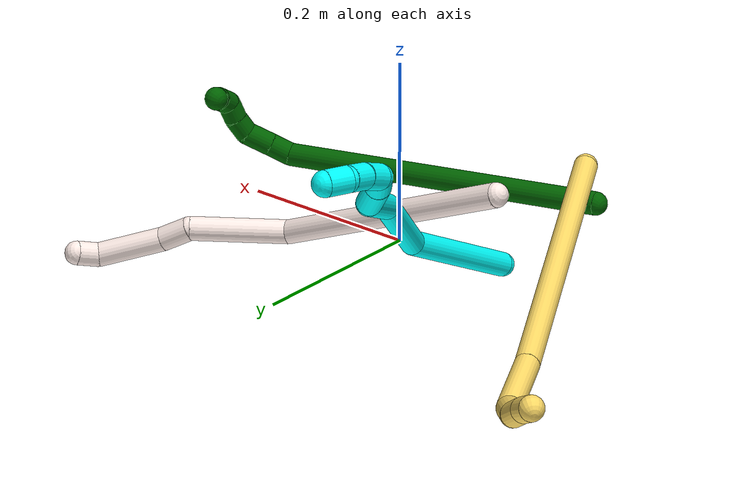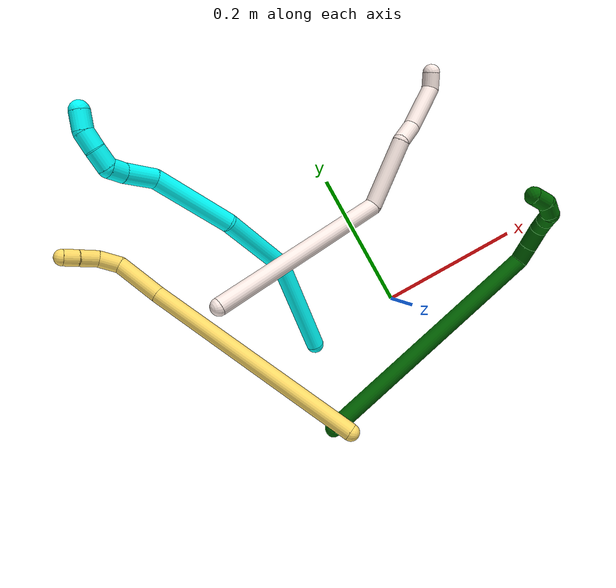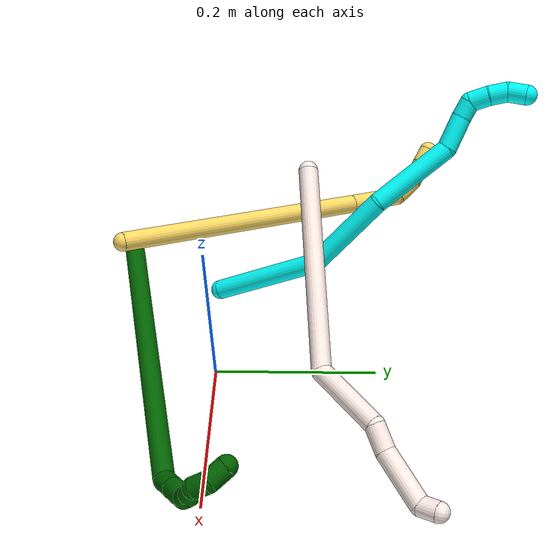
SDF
<sdf version="1.7">
 <world name="default">
  <model name="3">
   <static>0</static>
   <link name="3">
    <collision name="collision-cylinder-e_1_1_4">
     <pose>-0.013373 0.012123 0.069575 -0.172514 -0.187147 0.01623</pose>
     <geometry><cylinder><radius>0.0125</radius><length>0.143756</length></cylinder></geometry>
     <surface>
      <friction><ode><mu>1.16</mu><mu2>1.16</mu2><slip1>0</slip1><slip2>0</slip2></ode></friction>
      <contact><ode><kp>1e+06</kp><kd>1</kd><max_vel>0</max_vel><min_depth>0.001</min_depth></ode></contact>
     </surface>
    </collision>
    <visual name="visual-cylinder-e_1_1_4">
     <pose>-0.013373 0.012123 0.069575 -0.172514 -0.187147 0.01623</pose>
     <geometry><cylinder><radius>0.0125</radius><length>0.143756</length></cylinder></geometry>
     <material><ambient>0.003922 1 0.996078 1</ambient></material>
    </visual>
    <collision name="collision-cylinder-e_2_4_5">
     <pose>-0.015214 0.048175 0.188382 -0.452419 0.207654 -0.047955</pose>
     <geometry><cylinder><radius>0.0125</radius><length>0.111882</length></cylinder></geometry>
     <surface>
      <friction><ode><mu>1.16</mu><mu2>1.16</mu2><slip1>0</slip1><slip2>0</slip2></ode></friction>
      <contact><ode><kp>1e+06</kp><kd>1</kd><max_vel>0</max_vel><min_depth>0.001</min_depth></ode></contact>
     </surface>
    </collision>
    <visual name="visual-cylinder-e_2_4_5">
     <pose>-0.015214 0.048175 0.188382 -0.452419 0.207654 -0.047955</pose>
     <geometry><cylinder><radius>0.0125</radius><length>0.111882</length></cylinder></geometry>
     <material><ambient>0.003922 1 0.996078 1</ambient></material>
    </visual>
    <collision name="collision-cylinder-e_3_5_6">
     <pose>0.016789 0.081293 0.287286 -0.182925 0.385002 -0.035751</pose>
     <geometry><cylinder><radius>0.0125</radius><length>0.109009</length></cylinder></geometry>
     <surface>
      <friction><ode><mu>1.16</mu><mu2>1.16</mu2><slip1>0</slip1><slip2>0</slip2></ode></friction>
      <contact><ode><kp>1e+06</kp><kd>1</kd><max_vel>0</max_vel><min_depth>0.001</min_depth></ode></contact>
     </surface>
    </collision>
    <visual name="visual-cylinder-e_3_5_6">
     <pose>0.016789 0.081293 0.287286 -0.182925 0.385002 -0.035751</pose>
     <geometry><cylinder><radius>0.0125</radius><length>0.109009</length></cylinder></geometry>
     <material><ambient>0.003922 1 0.996078 1</ambient></material>
    </visual>
    <collision name="collision-cylinder-e_4_6_7">
     <pose>0.048951 0.101656 0.350775 -0.679989 0.581976 -0.21109</pose>
     <geometry><cylinder><radius>0.0125</radius><length>0.042544</length></cylinder></geometry>
     <surface>
      <friction><ode><mu>1.16</mu><mu2>1.16</mu2><slip1>0</slip1><slip2>0</slip2></ode></friction>
      <contact><ode><kp>1e+06</kp><kd>1</kd><max_vel>0</max_vel><min_depth>0.001</min_depth></ode></contact>
     </surface>
    </collision>
    <visual name="visual-cylinder-e_4_6_7">
     <pose>0.048951 0.101656 0.350775 -0.679989 0.581976 -0.21109</pose>
     <geometry><cylinder><radius>0.0125</radius><length>0.042544</length></cylinder></geometry>
     <material><ambient>0.003922 1 0.996078 1</ambient></material>
    </visual>
    <collision name="collision-cylinder-e_5_7_8">
     <pose>0.065178 0.118862 0.372218 -0.669343 0.436348 -0.153891</pose>
     <geometry><cylinder><radius>0.0125</radius><length>0.021457</length></cylinder></geometry>
     <surface>
      <friction><ode><mu>1.16</mu><mu2>1.16</mu2><slip1>0</slip1><slip2>0</slip2></ode></friction>
      <contact><ode><kp>1e+06</kp><kd>1</kd><max_vel>0</max_vel><min_depth>0.001</min_depth></ode></contact>
     </surface>
    </collision>
    <visual name="visual-cylinder-e_5_7_8">
     <pose>0.065178 0.118862 0.372218 -0.669343 0.436348 -0.153891</pose>
     <geometry><cylinder><radius>0.0125</radius><length>0.021457</length></cylinder></geometry>
     <material><ambient>0.003922 1 0.996078 1</ambient></material>
    </visual>
    <collision name="collision-cylinder-e_6_8_9">
     <pose>0.069281 0.125624 0.392035 -0.059708 -0.035286 0.001054</pose>
     <geometry><cylinder><radius>0.0125</radius><length>0.024444</length></cylinder></geometry>
     <surface>
      <friction><ode><mu>1.16</mu><mu2>1.16</mu2><slip1>0</slip1><slip2>0</slip2></ode></friction>
      <contact><ode><kp>1e+06</kp><kd>1</kd><max_vel>0</max_vel><min_depth>0.001</min_depth></ode></contact>
     </surface>
    </collision>
    <visual name="visual-cylinder-e_6_8_9">
     <pose>0.069281 0.125624 0.392035 -0.059708 -0.035286 0.001054</pose>
     <geometry><cylinder><radius>0.0125</radius><length>0.024444</length></cylinder></geometry>
     <material><ambient>0.003922 1 0.996078 1</ambient></material>
    </visual>
    <collision name="collision-cylinder-e_7_9_10">
     <pose>0.06825 0.12542 0.415773 0.080615 -0.051734 -0.002087</pose>
     <geometry><cylinder><radius>0.0125</radius><length>0.023196</length></cylinder></geometry>
     <surface>
      <friction><ode><mu>1.16</mu><mu2>1.16</mu2><slip1>0</slip1><slip2>0</slip2></ode></friction>
      <contact><ode><kp>1e+06</kp><kd>1</kd><max_vel>0</max_vel><min_depth>0.001</min_depth></ode></contact>
     </surface>
    </collision>
    <visual name="visual-cylinder-e_7_9_10">
     <pose>0.06825 0.12542 0.415773 0.080615 -0.051734 -0.002087</pose>
     <geometry><cylinder><radius>0.0125</radius><length>0.023196</length></cylinder></geometry>
     <material><ambient>0.003922 1 0.996078 1</ambient></material>
    </visual>
    <collision name="collision-cylinder-e_8_10_2">
     <pose>0.062792 0.121627 0.437748 0.26767 -0.422232 -0.057693</pose>
     <geometry><cylinder><radius>0.0125</radius><length>0.023712</length></cylinder></geometry>
     <surface>
      <friction><ode><mu>1.16</mu><mu2>1.16</mu2><slip1>0</slip1><slip2>0</slip2></ode></friction>
      <contact><ode><kp>1e+06</kp><kd>1</kd><max_vel>0</max_vel><min_depth>0.001</min_depth></ode></contact>
     </surface>
    </collision>
    <visual name="visual-cylinder-e_8_10_2">
     <pose>0.062792 0.121627 0.437748 0.26767 -0.422232 -0.057693</pose>
     <geometry><cylinder><radius>0.0125</radius><length>0.023712</length></cylinder></geometry>
     <material><ambient>0.003922 1 0.996078 1</ambient></material>
    </visual>
    <collision name="collision-sphere-2">
     <pose>0.057933 0.118767 0.448177 0 -0 0</pose>
     <geometry><sphere><radius>0.0125</radius></sphere></geometry>
     <surface>
      <friction><ode><mu>1.16</mu><mu2>1.16</mu2><slip1>0</slip1><slip2>0</slip2></ode></friction>
      <contact><ode><kp>1e+06</kp><kd>1</kd><max_vel>0</max_vel><min_depth>0.001</min_depth></ode></contact>
     </surface>
    </collision>
    <visual name="visual-sphere-2">
     <pose>0.057933 0.118767 0.448177 0 -0 0</pose>
     <geometry><sphere><radius>0.0125</radius></sphere></geometry>
     <material><ambient>0.003922 1 0.996078 1</ambient></material>
    </visual>
    <collision name="collision-sphere-10">
     <pose>0.067651 0.124487 0.427318 0 -0 0</pose>
     <geometry><sphere><radius>0.0125</radius></sphere></geometry>
     <surface>
      <friction><ode><mu>1.16</mu><mu2>1.16</mu2><slip1>0</slip1><slip2>0</slip2></ode></friction>
      <contact><ode><kp>1e+06</kp><kd>1</kd><max_vel>0</max_vel><min_depth>0.001</min_depth></ode></contact>
     </surface>
    </collision>
    <visual name="visual-sphere-10">
     <pose>0.067651 0.124487 0.427318 0 -0 0</pose>
     <geometry><sphere><radius>0.0125</radius></sphere></geometry>
     <material><ambient>0.003922 1 0.996078 1</ambient></material>
    </visual>
    <collision name="collision-sphere-9">
     <pose>0.06885 0.126353 0.404228 0 -0 0</pose>
     <geometry><sphere><radius>0.0125</radius></sphere></geometry>
     <surface>
      <friction><ode><mu>1.16</mu><mu2>1.16</mu2><slip1>0</slip1><slip2>0</slip2></ode></friction>
      <contact><ode><kp>1e+06</kp><kd>1</kd><max_vel>0</max_vel><min_depth>0.001</min_depth></ode></contact>
     </surface>
    </collision>
    <visual name="visual-sphere-9">
     <pose>0.06885 0.126353 0.404228 0 -0 0</pose>
     <geometry><sphere><radius>0.0125</radius></sphere></geometry>
     <material><ambient>0.003922 1 0.996078 1</ambient></material>
    </visual>
    <collision name="collision-sphere-4">
     <pose>-0.026747 0.024246 0.13915 0 -0 0</pose>
     <geometry><sphere><radius>0.0125</radius></sphere></geometry>
     <surface>
      <friction><ode><mu>1.16</mu><mu2>1.16</mu2><slip1>0</slip1><slip2>0</slip2></ode></friction>
      <contact><ode><kp>1e+06</kp><kd>1</kd><max_vel>0</max_vel><min_depth>0.001</min_depth></ode></contact>
     </surface>
    </collision>
    <visual name="visual-sphere-4">
     <pose>-0.026747 0.024246 0.13915 0 -0 0</pose>
     <geometry><sphere><radius>0.0125</radius></sphere></geometry>
     <material><ambient>0.003922 1 0.996078 1</ambient></material>
    </visual>
    <collision name="collision-sphere-1">
     <geometry><sphere><radius>0.0125</radius></sphere></geometry>
     <surface>
      <friction><ode><mu>1.16</mu><mu2>1.16</mu2><slip1>0</slip1><slip2>0</slip2></ode></friction>
      <contact><ode><kp>1e+06</kp><kd>1</kd><max_vel>0</max_vel><min_depth>0.001</min_depth></ode></contact>
     </surface>
    </collision>
    <visual name="visual-sphere-1">
     <geometry><sphere><radius>0.0125</radius></sphere></geometry>
     <material><ambient>0.003922 1 0.996078 1</ambient></material>
    </visual>
    <collision name="collision-sphere-8">
     <pose>0.069712 0.124895 0.379843 0 -0 0</pose>
     <geometry><sphere><radius>0.0125</radius></sphere></geometry>
     <surface>
      <friction><ode><mu>1.16</mu><mu2>1.16</mu2><slip1>0</slip1><slip2>0</slip2></ode></friction>
      <contact><ode><kp>1e+06</kp><kd>1</kd><max_vel>0</max_vel><min_depth>0.001</min_depth></ode></contact>
     </surface>
    </collision>
    <visual name="visual-sphere-8">
     <pose>0.069712 0.124895 0.379843 0 -0 0</pose>
     <geometry><sphere><radius>0.0125</radius></sphere></geometry>
     <material><ambient>0.003922 1 0.996078 1</ambient></material>
    </visual>
    <collision name="collision-sphere-5">
     <pose>-0.003681 0.072104 0.237614 0 -0 0</pose>
     <geometry><sphere><radius>0.0125</radius></sphere></geometry>
     <surface>
      <friction><ode><mu>1.16</mu><mu2>1.16</mu2><slip1>0</slip1><slip2>0</slip2></ode></friction>
      <contact><ode><kp>1e+06</kp><kd>1</kd><max_vel>0</max_vel><min_depth>0.001</min_depth></ode></contact>
     </surface>
    </collision>
    <visual name="visual-sphere-5">
     <pose>-0.003681 0.072104 0.237614 0 -0 0</pose>
     <geometry><sphere><radius>0.0125</radius></sphere></geometry>
     <material><ambient>0.003922 1 0.996078 1</ambient></material>
    </visual>
    <collision name="collision-sphere-6">
     <pose>0.037259 0.090482 0.336957 0 -0 0</pose>
     <geometry><sphere><radius>0.0125</radius></sphere></geometry>
     <surface>
      <friction><ode><mu>1.16</mu><mu2>1.16</mu2><slip1>0</slip1><slip2>0</slip2></ode></friction>
      <contact><ode><kp>1e+06</kp><kd>1</kd><max_vel>0</max_vel><min_depth>0.001</min_depth></ode></contact>
     </surface>
    </collision>
    <visual name="visual-sphere-6">
     <pose>0.037259 0.090482 0.336957 0 -0 0</pose>
     <geometry><sphere><radius>0.0125</radius></sphere></geometry>
     <material><ambient>0.003922 1 0.996078 1</ambient></material>
    </visual>
    <collision name="collision-sphere-7">
     <pose>0.060644 0.112829 0.364593 0 -0 0</pose>
     <geometry><sphere><radius>0.0125</radius></sphere></geometry>
     <surface>
      <friction><ode><mu>1.16</mu><mu2>1.16</mu2><slip1>0</slip1><slip2>0</slip2></ode></friction>
      <contact><ode><kp>1e+06</kp><kd>1</kd><max_vel>0</max_vel><min_depth>0.001</min_depth></ode></contact>
     </surface>
    </collision>
    <visual name="visual-sphere-7">
     <pose>0.060644 0.112829 0.364593 0 -0 0</pose>
     <geometry><sphere><radius>0.0125</radius></sphere></geometry>
     <material><ambient>0.003922 1 0.996078 1</ambient></material>
    </visual>
    <inertial>
     <pose>0.012904 0.063467 0.229824 0 -0 0</pose>
     <mass>0.5</mass>
     <inertia>
      <ixx>0.000482</ixx>
      <ixy>0</ixy>
      <ixz>0</ixz>
      <iyy>0.000486</iyy>
      <iyz>0</iyz>
      <izz>-0.000107</izz>
     </inertia>
    </inertial>
   </link>
   <pose>-0.132883 -0.003558 0.011492 1.26501 0.0119 -3.05309</pose>
  </model>
  <model name="5">
   <static>0</static>
   <link name="5">
    <collision name="collision-cylinder-e_1_1_4">
     <pose>-0.041487 0.049731 0.158381 -0.304249 -0.2449 0.03773</pose>
     <geometry><cylinder><radius>0.0125</radius><length>0.342221</length></cylinder></geometry>
     <surface>
      <friction><ode><mu>1.16</mu><mu2>1.16</mu2><slip1>0</slip1><slip2>0</slip2></ode></friction>
      <contact><ode><kp>1e+06</kp><kd>1</kd><max_vel>0</max_vel><min_depth>0.001</min_depth></ode></contact>
     </surface>
    </collision>
    <visual name="visual-cylinder-e_1_1_4">
     <pose>-0.041487 0.049731 0.158381 -0.304249 -0.2449 0.03773</pose>
     <geometry><cylinder><radius>0.0125</radius><length>0.342221</length></cylinder></geometry>
     <material><ambient>1 0.858824 0.4 1</ambient></material>
    </visual>
    <collision name="collision-cylinder-e_2_4_5">
     <pose>-0.091951 0.112654 0.349789 -0.38 -0.247247 0.047785</pose>
     <geometry><cylinder><radius>0.0125</radius><length>0.073359</length></cylinder></geometry>
     <surface>
      <friction><ode><mu>1.16</mu><mu2>1.16</mu2><slip1>0</slip1><slip2>0</slip2></ode></friction>
      <contact><ode><kp>1e+06</kp><kd>1</kd><max_vel>0</max_vel><min_depth>0.001</min_depth></ode></contact>
     </surface>
    </collision>
    <visual name="visual-cylinder-e_2_4_5">
     <pose>-0.091951 0.112654 0.349789 -0.38 -0.247247 0.047785</pose>
     <geometry><cylinder><radius>0.0125</radius><length>0.073359</length></cylinder></geometry>
     <material><ambient>1 0.858824 0.4 1</ambient></material>
    </visual>
    <collision name="collision-cylinder-e_3_5_6">
     <pose>-0.096045 0.13305 0.396719 -0.478123 0.302295 -0.074208</pose>
     <geometry><cylinder><radius>0.0125</radius><length>0.032807</length></cylinder></geometry>
     <surface>
      <friction><ode><mu>1.16</mu><mu2>1.16</mu2><slip1>0</slip1><slip2>0</slip2></ode></friction>
      <contact><ode><kp>1e+06</kp><kd>1</kd><max_vel>0</max_vel><min_depth>0.001</min_depth></ode></contact>
     </surface>
    </collision>
    <visual name="visual-cylinder-e_3_5_6">
     <pose>-0.096045 0.13305 0.396719 -0.478123 0.302295 -0.074208</pose>
     <geometry><cylinder><radius>0.0125</radius><length>0.032807</length></cylinder></geometry>
     <material><ambient>1 0.858824 0.4 1</ambient></material>
    </visual>
    <collision name="collision-cylinder-e_4_6_7">
     <pose>-0.082129 0.146832 0.419932 -0.615038 0.67009 -0.22026</pose>
     <geometry><cylinder><radius>0.0125</radius><length>0.029087</length></cylinder></geometry>
     <surface>
      <friction><ode><mu>1.16</mu><mu2>1.16</mu2><slip1>0</slip1><slip2>0</slip2></ode></friction>
      <contact><ode><kp>1e+06</kp><kd>1</kd><max_vel>0</max_vel><min_depth>0.001</min_depth></ode></contact>
     </surface>
    </collision>
    <visual name="visual-cylinder-e_4_6_7">
     <pose>-0.082129 0.146832 0.419932 -0.615038 0.67009 -0.22026</pose>
     <geometry><cylinder><radius>0.0125</radius><length>0.029087</length></cylinder></geometry>
     <material><ambient>1 0.858824 0.4 1</ambient></material>
    </visual>
    <collision name="collision-cylinder-e_5_7_2">
     <pose>-0.066528 0.157961 0.43718 -0.520633 0.622618 -0.170997</pose>
     <geometry><cylinder><radius>0.0125</radius><length>0.022527</length></cylinder></geometry>
     <surface>
      <friction><ode><mu>1.16</mu><mu2>1.16</mu2><slip1>0</slip1><slip2>0</slip2></ode></friction>
      <contact><ode><kp>1e+06</kp><kd>1</kd><max_vel>0</max_vel><min_depth>0.001</min_depth></ode></contact>
     </surface>
    </collision>
    <visual name="visual-cylinder-e_5_7_2">
     <pose>-0.066528 0.157961 0.43718 -0.520633 0.622618 -0.170997</pose>
     <geometry><cylinder><radius>0.0125</radius><length>0.022527</length></cylinder></geometry>
     <material><ambient>1 0.858824 0.4 1</ambient></material>
    </visual>
    <collision name="collision-sphere-2">
     <pose>-0.05996 0.162512 0.445117 0 -0 0</pose>
     <geometry><sphere><radius>0.0125</radius></sphere></geometry>
     <surface>
      <friction><ode><mu>1.16</mu><mu2>1.16</mu2><slip1>0</slip1><slip2>0</slip2></ode></friction>
      <contact><ode><kp>1e+06</kp><kd>1</kd><max_vel>0</max_vel><min_depth>0.001</min_depth></ode></contact>
     </surface>
    </collision>
    <visual name="visual-sphere-2">
     <pose>-0.05996 0.162512 0.445117 0 -0 0</pose>
     <geometry><sphere><radius>0.0125</radius></sphere></geometry>
     <material><ambient>1 0.858824 0.4 1</ambient></material>
    </visual>
    <collision name="collision-sphere-7">
     <pose>-0.073097 0.153409 0.429242 0 -0 0</pose>
     <geometry><sphere><radius>0.0125</radius></sphere></geometry>
     <surface>
      <friction><ode><mu>1.16</mu><mu2>1.16</mu2><slip1>0</slip1><slip2>0</slip2></ode></friction>
      <contact><ode><kp>1e+06</kp><kd>1</kd><max_vel>0</max_vel><min_depth>0.001</min_depth></ode></contact>
     </surface>
    </collision>
    <visual name="visual-sphere-7">
     <pose>-0.073097 0.153409 0.429242 0 -0 0</pose>
     <geometry><sphere><radius>0.0125</radius></sphere></geometry>
     <material><ambient>1 0.858824 0.4 1</ambient></material>
    </visual>
    <collision name="collision-sphere-6">
     <pose>-0.091161 0.140255 0.410622 0 -0 0</pose>
     <geometry><sphere><radius>0.0125</radius></sphere></geometry>
     <surface>
      <friction><ode><mu>1.16</mu><mu2>1.16</mu2><slip1>0</slip1><slip2>0</slip2></ode></friction>
      <contact><ode><kp>1e+06</kp><kd>1</kd><max_vel>0</max_vel><min_depth>0.001</min_depth></ode></contact>
     </surface>
    </collision>
    <visual name="visual-sphere-6">
     <pose>-0.091161 0.140255 0.410622 0 -0 0</pose>
     <geometry><sphere><radius>0.0125</radius></sphere></geometry>
     <material><ambient>1 0.858824 0.4 1</ambient></material>
    </visual>
    <collision name="collision-sphere-5">
     <pose>-0.100928 0.125845 0.382816 0 -0 0</pose>
     <geometry><sphere><radius>0.0125</radius></sphere></geometry>
     <surface>
      <friction><ode><mu>1.16</mu><mu2>1.16</mu2><slip1>0</slip1><slip2>0</slip2></ode></friction>
      <contact><ode><kp>1e+06</kp><kd>1</kd><max_vel>0</max_vel><min_depth>0.001</min_depth></ode></contact>
     </surface>
    </collision>
    <visual name="visual-sphere-5">
     <pose>-0.100928 0.125845 0.382816 0 -0 0</pose>
     <geometry><sphere><radius>0.0125</radius></sphere></geometry>
     <material><ambient>1 0.858824 0.4 1</ambient></material>
    </visual>
    <collision name="collision-sphere-1">
     <geometry><sphere><radius>0.0125</radius></sphere></geometry>
     <surface>
      <friction><ode><mu>1.16</mu><mu2>1.16</mu2><slip1>0</slip1><slip2>0</slip2></ode></friction>
      <contact><ode><kp>1e+06</kp><kd>1</kd><max_vel>0</max_vel><min_depth>0.001</min_depth></ode></contact>
     </surface>
    </collision>
    <visual name="visual-sphere-1">
     <geometry><sphere><radius>0.0125</radius></sphere></geometry>
     <material><ambient>1 0.858824 0.4 1</ambient></material>
    </visual>
    <collision name="collision-sphere-4">
     <pose>-0.082975 0.099462 0.316762 0 -0 0</pose>
     <geometry><sphere><radius>0.0125</radius></sphere></geometry>
     <surface>
      <friction><ode><mu>1.16</mu><mu2>1.16</mu2><slip1>0</slip1><slip2>0</slip2></ode></friction>
      <contact><ode><kp>1e+06</kp><kd>1</kd><max_vel>0</max_vel><min_depth>0.001</min_depth></ode></contact>
     </surface>
    </collision>
    <visual name="visual-sphere-4">
     <pose>-0.082975 0.099462 0.316762 0 -0 0</pose>
     <geometry><sphere><radius>0.0125</radius></sphere></geometry>
     <material><ambient>1 0.858824 0.4 1</ambient></material>
    </visual>
    <inertial>
     <pose>-0.055963 0.074955 0.229878 0 -0 0</pose>
     <mass>0.5</mass>
     <inertia>
      <ixx>0.003412</ixx>
      <ixy>0</ixy>
      <ixz>0</ixz>
      <iyy>0.003384</iyy>
      <iyz>0</iyz>
      <izz>-0.000139</izz>
     </inertia>
    </inertial>
   </link>
   <pose>-0.146195 -0.126464 0.084042 1.90188 -0.736989 -2.50566</pose>
  </model>
  <model name="6">
   <static>0</static>
   <link name="6">
    <collision name="collision-cylinder-e_1_1_4">
     <pose>0.063282 0.000692 0.169329 -0.004085 0.35765 -0.000738</pose>
     <geometry><cylinder><radius>0.0125</radius><length>0.361538</length></cylinder></geometry>
     <surface>
      <friction><ode><mu>1.16</mu><mu2>1.16</mu2><slip1>0</slip1><slip2>0</slip2></ode></friction>
      <contact><ode><kp>1e+06</kp><kd>1</kd><max_vel>0</max_vel><min_depth>0.001</min_depth></ode></contact>
     </surface>
    </collision>
    <visual name="visual-cylinder-e_1_1_4">
     <pose>0.063282 0.000692 0.169329 -0.004085 0.35765 -0.000738</pose>
     <geometry><cylinder><radius>0.0125</radius><length>0.361538</length></cylinder></geometry>
     <material><ambient>0 0.392157 0.003922 1</ambient></material>
    </visual>
    <collision name="collision-cylinder-e_2_4_5">
     <pose>0.131841 0.008571 0.347175 -0.700931 0.442127 -0.163939</pose>
     <geometry><cylinder><radius>0.0125</radius><length>0.02466</length></cylinder></geometry>
     <surface>
      <friction><ode><mu>1.16</mu><mu2>1.16</mu2><slip1>0</slip1><slip2>0</slip2></ode></friction>
      <contact><ode><kp>1e+06</kp><kd>1</kd><max_vel>0</max_vel><min_depth>0.001</min_depth></ode></contact>
     </surface>
    </collision>
    <visual name="visual-cylinder-e_2_4_5">
     <pose>0.131841 0.008571 0.347175 -0.700931 0.442127 -0.163939</pose>
     <geometry><cylinder><radius>0.0125</radius><length>0.02466</length></cylinder></geometry>
     <material><ambient>0 0.392157 0.003922 1</ambient></material>
    </visual>
    <collision name="collision-cylinder-e_3_5_6">
     <pose>0.143488 0.02419 0.36566 -0.702092 0.454069 -0.168802</pose>
     <geometry><cylinder><radius>0.0125</radius><length>0.029056</length></cylinder></geometry>
     <surface>
      <friction><ode><mu>1.16</mu><mu2>1.16</mu2><slip1>0</slip1><slip2>0</slip2></ode></friction>
      <contact><ode><kp>1e+06</kp><kd>1</kd><max_vel>0</max_vel><min_depth>0.001</min_depth></ode></contact>
     </surface>
    </collision>
    <visual name="visual-cylinder-e_3_5_6">
     <pose>0.143488 0.02419 0.36566 -0.702092 0.454069 -0.168802</pose>
     <geometry><cylinder><radius>0.0125</radius><length>0.029056</length></cylinder></geometry>
     <material><ambient>0 0.392157 0.003922 1</ambient></material>
    </visual>
    <collision name="collision-cylinder-e_4_6_7">
     <pose>0.151182 0.042107 0.37983 -1.15375 0.126635 -0.082467</pose>
     <geometry><cylinder><radius>0.0125</radius><length>0.020916</length></cylinder></geometry>
     <surface>
      <friction><ode><mu>1.16</mu><mu2>1.16</mu2><slip1>0</slip1><slip2>0</slip2></ode></friction>
      <contact><ode><kp>1e+06</kp><kd>1</kd><max_vel>0</max_vel><min_depth>0.001</min_depth></ode></contact>
     </surface>
    </collision>
    <visual name="visual-cylinder-e_4_6_7">
     <pose>0.151182 0.042107 0.37983 -1.15375 0.126635 -0.082467</pose>
     <geometry><cylinder><radius>0.0125</radius><length>0.020916</length></cylinder></geometry>
     <material><ambient>0 0.392157 0.003922 1</ambient></material>
    </visual>
    <collision name="collision-cylinder-e_5_7_8">
     <pose>0.152273 0.061312 0.386652 -1.30753 -0.022813 0.017479</pose>
     <geometry><cylinder><radius>0.0125</radius><length>0.020141</length></cylinder></geometry>
     <surface>
      <friction><ode><mu>1.16</mu><mu2>1.16</mu2><slip1>0</slip1><slip2>0</slip2></ode></friction>
      <contact><ode><kp>1e+06</kp><kd>1</kd><max_vel>0</max_vel><min_depth>0.001</min_depth></ode></contact>
     </surface>
    </collision>
    <visual name="visual-cylinder-e_5_7_8">
     <pose>0.152273 0.061312 0.386652 -1.30753 -0.022813 0.017479</pose>
     <geometry><cylinder><radius>0.0125</radius><length>0.020141</length></cylinder></geometry>
     <material><ambient>0 0.392157 0.003922 1</ambient></material>
    </visual>
    <collision name="collision-cylinder-e_6_8_9">
     <pose>0.157955 0.079104 0.388318 -1.68854 0.628933 -0.701721</pose>
     <geometry><cylinder><radius>0.0125</radius><length>0.0201</length></cylinder></geometry>
     <surface>
      <friction><ode><mu>1.16</mu><mu2>1.16</mu2><slip1>0</slip1><slip2>0</slip2></ode></friction>
      <contact><ode><kp>1e+06</kp><kd>1</kd><max_vel>0</max_vel><min_depth>0.001</min_depth></ode></contact>
     </surface>
    </collision>
    <visual name="visual-cylinder-e_6_8_9">
     <pose>0.157955 0.079104 0.388318 -1.68854 0.628933 -0.701721</pose>
     <geometry><cylinder><radius>0.0125</radius><length>0.0201</length></cylinder></geometry>
     <material><ambient>0 0.392157 0.003922 1</ambient></material>
    </visual>
    <collision name="collision-cylinder-e_7_9_2">
     <pose>0.169574 0.094591 0.380184 -2.33992 0.505083 -1.09392</pose>
     <geometry><cylinder><radius>0.0125</radius><length>0.02359</length></cylinder></geometry>
     <surface>
      <friction><ode><mu>1.16</mu><mu2>1.16</mu2><slip1>0</slip1><slip2>0</slip2></ode></friction>
      <contact><ode><kp>1e+06</kp><kd>1</kd><max_vel>0</max_vel><min_depth>0.001</min_depth></ode></contact>
     </surface>
    </collision>
    <visual name="visual-cylinder-e_7_9_2">
     <pose>0.169574 0.094591 0.380184 -2.33992 0.505083 -1.09392</pose>
     <geometry><cylinder><radius>0.0125</radius><length>0.02359</length></cylinder></geometry>
     <material><ambient>0 0.392157 0.003922 1</ambient></material>
    </visual>
    <collision name="collision-sphere-2">
     <pose>0.175282 0.102008 0.373005 0 -0 0</pose>
     <geometry><sphere><radius>0.0125</radius></sphere></geometry>
     <surface>
      <friction><ode><mu>1.16</mu><mu2>1.16</mu2><slip1>0</slip1><slip2>0</slip2></ode></friction>
      <contact><ode><kp>1e+06</kp><kd>1</kd><max_vel>0</max_vel><min_depth>0.001</min_depth></ode></contact>
     </surface>
    </collision>
    <visual name="visual-sphere-2">
     <pose>0.175282 0.102008 0.373005 0 -0 0</pose>
     <geometry><sphere><radius>0.0125</radius></sphere></geometry>
     <material><ambient>0 0.392157 0.003922 1</ambient></material>
    </visual>
    <collision name="collision-sphere-9">
     <pose>0.163867 0.087174 0.387363 0 -0 0</pose>
     <geometry><sphere><radius>0.0125</radius></sphere></geometry>
     <surface>
      <friction><ode><mu>1.16</mu><mu2>1.16</mu2><slip1>0</slip1><slip2>0</slip2></ode></friction>
      <contact><ode><kp>1e+06</kp><kd>1</kd><max_vel>0</max_vel><min_depth>0.001</min_depth></ode></contact>
     </surface>
    </collision>
    <visual name="visual-sphere-9">
     <pose>0.163867 0.087174 0.387363 0 -0 0</pose>
     <geometry><sphere><radius>0.0125</radius></sphere></geometry>
     <material><ambient>0 0.392157 0.003922 1</ambient></material>
    </visual>
    <collision name="collision-sphere-4">
     <pose>0.126565 0.001383 0.338658 0 -0 0</pose>
     <geometry><sphere><radius>0.0125</radius></sphere></geometry>
     <surface>
      <friction><ode><mu>1.16</mu><mu2>1.16</mu2><slip1>0</slip1><slip2>0</slip2></ode></friction>
      <contact><ode><kp>1e+06</kp><kd>1</kd><max_vel>0</max_vel><min_depth>0.001</min_depth></ode></contact>
     </surface>
    </collision>
    <visual name="visual-sphere-4">
     <pose>0.126565 0.001383 0.338658 0 -0 0</pose>
     <geometry><sphere><radius>0.0125</radius></sphere></geometry>
     <material><ambient>0 0.392157 0.003922 1</ambient></material>
    </visual>
    <collision name="collision-sphere-1">
     <geometry><sphere><radius>0.0125</radius></sphere></geometry>
     <surface>
      <friction><ode><mu>1.16</mu><mu2>1.16</mu2><slip1>0</slip1><slip2>0</slip2></ode></friction>
      <contact><ode><kp>1e+06</kp><kd>1</kd><max_vel>0</max_vel><min_depth>0.001</min_depth></ode></contact>
     </surface>
    </collision>
    <visual name="visual-sphere-1">
     <geometry><sphere><radius>0.0125</radius></sphere></geometry>
     <material><ambient>0 0.392157 0.003922 1</ambient></material>
    </visual>
    <collision name="collision-sphere-8">
     <pose>0.152043 0.071033 0.389272 0 -0 0</pose>
     <geometry><sphere><radius>0.0125</radius></sphere></geometry>
     <surface>
      <friction><ode><mu>1.16</mu><mu2>1.16</mu2><slip1>0</slip1><slip2>0</slip2></ode></friction>
      <contact><ode><kp>1e+06</kp><kd>1</kd><max_vel>0</max_vel><min_depth>0.001</min_depth></ode></contact>
     </surface>
    </collision>
    <visual name="visual-sphere-8">
     <pose>0.152043 0.071033 0.389272 0 -0 0</pose>
     <geometry><sphere><radius>0.0125</radius></sphere></geometry>
     <material><ambient>0 0.392157 0.003922 1</ambient></material>
    </visual>
    <collision name="collision-sphere-5">
     <pose>0.137116 0.015758 0.355692 0 -0 0</pose>
     <geometry><sphere><radius>0.0125</radius></sphere></geometry>
     <surface>
      <friction><ode><mu>1.16</mu><mu2>1.16</mu2><slip1>0</slip1><slip2>0</slip2></ode></friction>
      <contact><ode><kp>1e+06</kp><kd>1</kd><max_vel>0</max_vel><min_depth>0.001</min_depth></ode></contact>
     </surface>
    </collision>
    <visual name="visual-sphere-5">
     <pose>0.137116 0.015758 0.355692 0 -0 0</pose>
     <geometry><sphere><radius>0.0125</radius></sphere></geometry>
     <material><ambient>0 0.392157 0.003922 1</ambient></material>
    </visual>
    <collision name="collision-sphere-6">
     <pose>0.149861 0.032622 0.375628 0 -0 0</pose>
     <geometry><sphere><radius>0.0125</radius></sphere></geometry>
     <surface>
      <friction><ode><mu>1.16</mu><mu2>1.16</mu2><slip1>0</slip1><slip2>0</slip2></ode></friction>
      <contact><ode><kp>1e+06</kp><kd>1</kd><max_vel>0</max_vel><min_depth>0.001</min_depth></ode></contact>
     </surface>
    </collision>
    <visual name="visual-sphere-6">
     <pose>0.149861 0.032622 0.375628 0 -0 0</pose>
     <geometry><sphere><radius>0.0125</radius></sphere></geometry>
     <material><ambient>0 0.392157 0.003922 1</ambient></material>
    </visual>
    <collision name="collision-sphere-7">
     <pose>0.152502 0.051592 0.384033 0 -0 0</pose>
     <geometry><sphere><radius>0.0125</radius></sphere></geometry>
     <surface>
      <friction><ode><mu>1.16</mu><mu2>1.16</mu2><slip1>0</slip1><slip2>0</slip2></ode></friction>
      <contact><ode><kp>1e+06</kp><kd>1</kd><max_vel>0</max_vel><min_depth>0.001</min_depth></ode></contact>
     </surface>
    </collision>
    <visual name="visual-sphere-7">
     <pose>0.152502 0.051592 0.384033 0 -0 0</pose>
     <geometry><sphere><radius>0.0125</radius></sphere></geometry>
     <material><ambient>0 0.392157 0.003922 1</ambient></material>
    </visual>
    <inertial>
     <pose>0.087407 0.014202 0.22582 0 -0 0</pose>
     <mass>0.5</mass>
     <inertia>
      <ixx>0.003719</ixx>
      <ixy>0</ixy>
      <ixz>0</ixz>
      <iyy>0.00396</iyy>
      <iyz>0</iyz>
      <izz>-0.001382</izz>
     </inertia>
    </inertial>
   </link>
   <pose>-0.166471 -0.117881 0.049677 1.4832 0.354186 1.42478</pose>
  </model>
  <model name="11">
   <static>0</static>
   <link name="11">
    <collision name="collision-cylinder-e_1_1_4">
     <pose>0.023596 0.036525 0.128404 -0.277137 0.174944 -0.024459</pose>
     <geometry><cylinder><radius>0.0125</radius><length>0.271134</length></cylinder></geometry>
     <surface>
      <friction><ode><mu>1.16</mu><mu2>1.16</mu2><slip1>0</slip1><slip2>0</slip2></ode></friction>
      <contact><ode><kp>1e+06</kp><kd>1</kd><max_vel>0</max_vel><min_depth>0.001</min_depth></ode></contact>
     </surface>
    </collision>
    <visual name="visual-cylinder-e_1_1_4">
     <pose>0.023596 0.036525 0.128404 -0.277137 0.174944 -0.024459</pose>
     <geometry><cylinder><radius>0.0125</radius><length>0.271134</length></cylinder></geometry>
     <material><ambient>1 0.933333 0.909804 1</ambient></material>
    </visual>
    <collision name="collision-cylinder-e_2_4_5">
     <pose>0.077615 0.103195 0.283509 -0.845895 0.646997 -0.299564</pose>
     <geometry><cylinder><radius>0.0125</radius><length>0.10094</length></cylinder></geometry>
     <surface>
      <friction><ode><mu>1.16</mu><mu2>1.16</mu2><slip1>0</slip1><slip2>0</slip2></ode></friction>
      <contact><ode><kp>1e+06</kp><kd>1</kd><max_vel>0</max_vel><min_depth>0.001</min_depth></ode></contact>
     </surface>
    </collision>
    <visual name="visual-cylinder-e_2_4_5">
     <pose>0.077615 0.103195 0.283509 -0.845895 0.646997 -0.299564</pose>
     <geometry><cylinder><radius>0.0125</radius><length>0.10094</length></cylinder></geometry>
     <material><ambient>1 0.933333 0.909804 1</ambient></material>
    </visual>
    <collision name="collision-cylinder-e_3_5_6">
     <pose>0.115936 0.136437 0.32431 -0.21622 0.500622 -0.055484</pose>
     <geometry><cylinder><radius>0.0125</radius><length>0.03291</length></cylinder></geometry>
     <surface>
      <friction><ode><mu>1.16</mu><mu2>1.16</mu2><slip1>0</slip1><slip2>0</slip2></ode></friction>
      <contact><ode><kp>1e+06</kp><kd>1</kd><max_vel>0</max_vel><min_depth>0.001</min_depth></ode></contact>
     </surface>
    </collision>
    <visual name="visual-cylinder-e_3_5_6">
     <pose>0.115936 0.136437 0.32431 -0.21622 0.500622 -0.055484</pose>
     <geometry><cylinder><radius>0.0125</radius><length>0.03291</length></cylinder></geometry>
     <material><ambient>1 0.933333 0.909804 1</ambient></material>
    </visual>
    <collision name="collision-cylinder-e_4_6_7">
     <pose>0.14504 0.151556 0.364416 -0.433032 0.637189 -0.144848</pose>
     <geometry><cylinder><radius>0.0125</radius><length>0.07129</length></cylinder></geometry>
     <surface>
      <friction><ode><mu>1.16</mu><mu2>1.16</mu2><slip1>0</slip1><slip2>0</slip2></ode></friction>
      <contact><ode><kp>1e+06</kp><kd>1</kd><max_vel>0</max_vel><min_depth>0.001</min_depth></ode></contact>
     </surface>
    </collision>
    <visual name="visual-cylinder-e_4_6_7">
     <pose>0.14504 0.151556 0.364416 -0.433032 0.637189 -0.144848</pose>
     <geometry><cylinder><radius>0.0125</radius><length>0.07129</length></cylinder></geometry>
     <material><ambient>1 0.933333 0.909804 1</ambient></material>
    </visual>
    <collision name="collision-cylinder-e_5_7_2">
     <pose>0.175381 0.170972 0.392047 -1.35439 0.878795 -0.722676</pose>
     <geometry><cylinder><radius>0.0125</radius><length>0.023726</length></cylinder></geometry>
     <surface>
      <friction><ode><mu>1.16</mu><mu2>1.16</mu2><slip1>0</slip1><slip2>0</slip2></ode></friction>
      <contact><ode><kp>1e+06</kp><kd>1</kd><max_vel>0</max_vel><min_depth>0.001</min_depth></ode></contact>
     </surface>
    </collision>
    <visual name="visual-cylinder-e_5_7_2">
     <pose>0.175381 0.170972 0.392047 -1.35439 0.878795 -0.722676</pose>
     <geometry><cylinder><radius>0.0125</radius><length>0.023726</length></cylinder></geometry>
     <material><ambient>1 0.933333 0.909804 1</ambient></material>
    </visual>
    <collision name="collision-sphere-2">
     <pose>0.184515 0.178365 0.393672 0 -0 0</pose>
     <geometry><sphere><radius>0.0125</radius></sphere></geometry>
     <surface>
      <friction><ode><mu>1.16</mu><mu2>1.16</mu2><slip1>0</slip1><slip2>0</slip2></ode></friction>
      <contact><ode><kp>1e+06</kp><kd>1</kd><max_vel>0</max_vel><min_depth>0.001</min_depth></ode></contact>
     </surface>
    </collision>
    <visual name="visual-sphere-2">
     <pose>0.184515 0.178365 0.393672 0 -0 0</pose>
     <geometry><sphere><radius>0.0125</radius></sphere></geometry>
     <material><ambient>1 0.933333 0.909804 1</ambient></material>
    </visual>
    <collision name="collision-sphere-7">
     <pose>0.166247 0.163579 0.390421 0 -0 0</pose>
     <geometry><sphere><radius>0.0125</radius></sphere></geometry>
     <surface>
      <friction><ode><mu>1.16</mu><mu2>1.16</mu2><slip1>0</slip1><slip2>0</slip2></ode></friction>
      <contact><ode><kp>1e+06</kp><kd>1</kd><max_vel>0</max_vel><min_depth>0.001</min_depth></ode></contact>
     </surface>
    </collision>
    <visual name="visual-sphere-7">
     <pose>0.166247 0.163579 0.390421 0 -0 0</pose>
     <geometry><sphere><radius>0.0125</radius></sphere></geometry>
     <material><ambient>1 0.933333 0.909804 1</ambient></material>
    </visual>
    <collision name="collision-sphere-6">
     <pose>0.123834 0.139534 0.33841 0 -0 0</pose>
     <geometry><sphere><radius>0.0125</radius></sphere></geometry>
     <surface>
      <friction><ode><mu>1.16</mu><mu2>1.16</mu2><slip1>0</slip1><slip2>0</slip2></ode></friction>
      <contact><ode><kp>1e+06</kp><kd>1</kd><max_vel>0</max_vel><min_depth>0.001</min_depth></ode></contact>
     </surface>
    </collision>
    <visual name="visual-sphere-6">
     <pose>0.123834 0.139534 0.33841 0 -0 0</pose>
     <geometry><sphere><radius>0.0125</radius></sphere></geometry>
     <material><ambient>1 0.933333 0.909804 1</ambient></material>
    </visual>
    <collision name="collision-sphere-5">
     <pose>0.108038 0.13334 0.31021 0 -0 0</pose>
     <geometry><sphere><radius>0.0125</radius></sphere></geometry>
     <surface>
      <friction><ode><mu>1.16</mu><mu2>1.16</mu2><slip1>0</slip1><slip2>0</slip2></ode></friction>
      <contact><ode><kp>1e+06</kp><kd>1</kd><max_vel>0</max_vel><min_depth>0.001</min_depth></ode></contact>
     </surface>
    </collision>
    <visual name="visual-sphere-5">
     <pose>0.108038 0.13334 0.31021 0 -0 0</pose>
     <geometry><sphere><radius>0.0125</radius></sphere></geometry>
     <material><ambient>1 0.933333 0.909804 1</ambient></material>
    </visual>
    <collision name="collision-sphere-1">
     <geometry><sphere><radius>0.0125</radius></sphere></geometry>
     <surface>
      <friction><ode><mu>1.16</mu><mu2>1.16</mu2><slip1>0</slip1><slip2>0</slip2></ode></friction>
      <contact><ode><kp>1e+06</kp><kd>1</kd><max_vel>0</max_vel><min_depth>0.001</min_depth></ode></contact>
     </surface>
    </collision>
    <visual name="visual-sphere-1">
     <geometry><sphere><radius>0.0125</radius></sphere></geometry>
     <material><ambient>1 0.933333 0.909804 1</ambient></material>
    </visual>
    <collision name="collision-sphere-4">
     <pose>0.047192 0.073051 0.256807 0 -0 0</pose>
     <geometry><sphere><radius>0.0125</radius></sphere></geometry>
     <surface>
      <friction><ode><mu>1.16</mu><mu2>1.16</mu2><slip1>0</slip1><slip2>0</slip2></ode></friction>
      <contact><ode><kp>1e+06</kp><kd>1</kd><max_vel>0</max_vel><min_depth>0.001</min_depth></ode></contact>
     </surface>
    </collision>
    <visual name="visual-sphere-4">
     <pose>0.047192 0.073051 0.256807 0 -0 0</pose>
     <geometry><sphere><radius>0.0125</radius></sphere></geometry>
     <material><ambient>1 0.933333 0.909804 1</ambient></material>
    </visual>
    <inertial>
     <pose>0.065097 0.079342 0.218772 0 -0 0</pose>
     <mass>0.5</mass>
     <inertia>
      <ixx>0.001693</ixx>
      <ixy>0</ixy>
      <ixz>0</ixz>
      <iyy>0.001662</iyy>
      <iyz>0</iyz>
      <izz>-0.000855</izz>
     </inertia>
    </inertial>
   </link>
   <pose>-0.211894 0.112627 0.151228 2.21883 0.221609 1.55269</pose>
  </model>
 </world>
</sdf>
